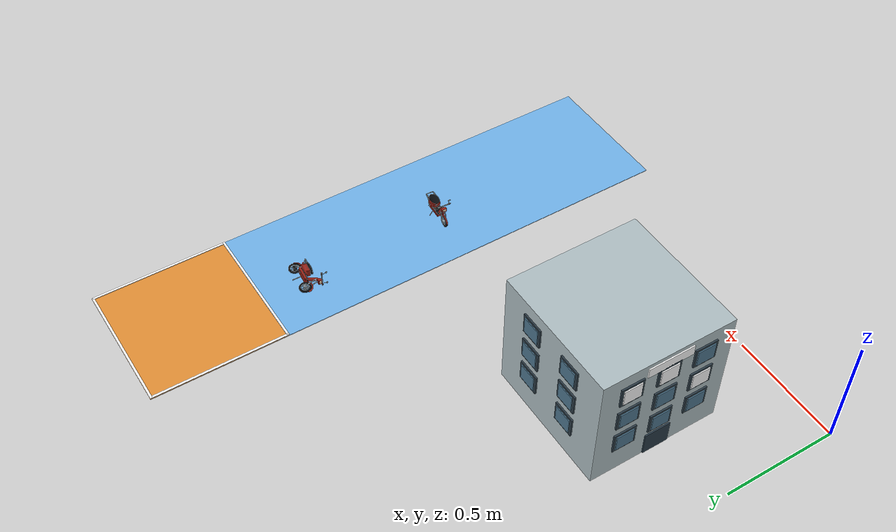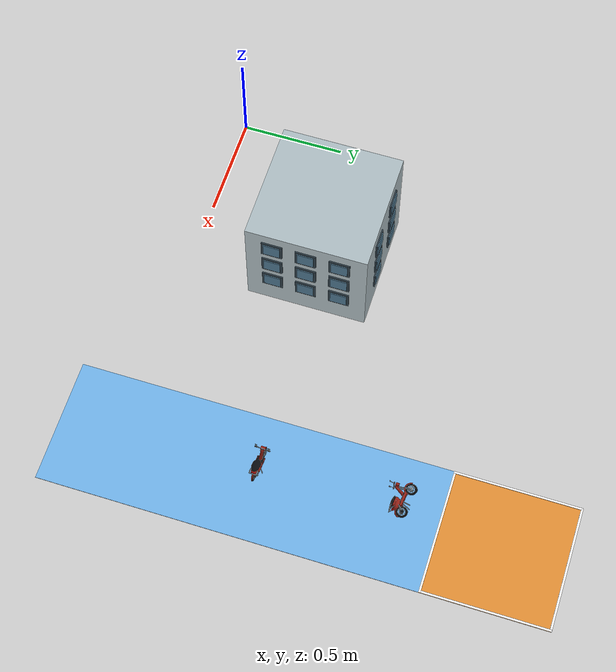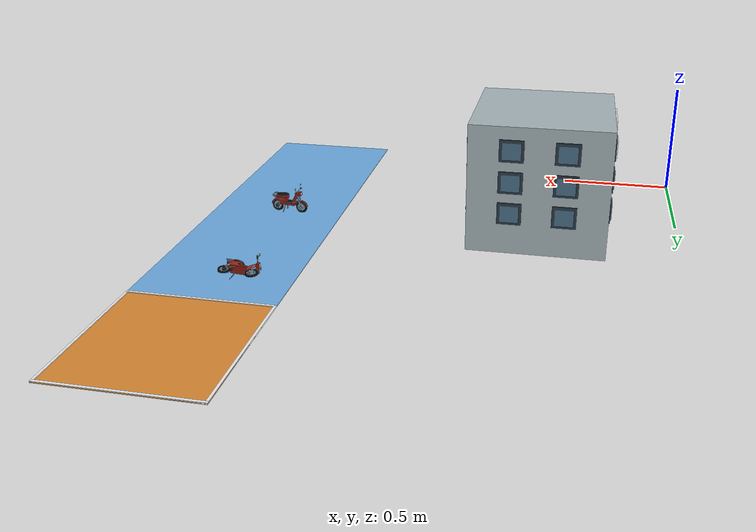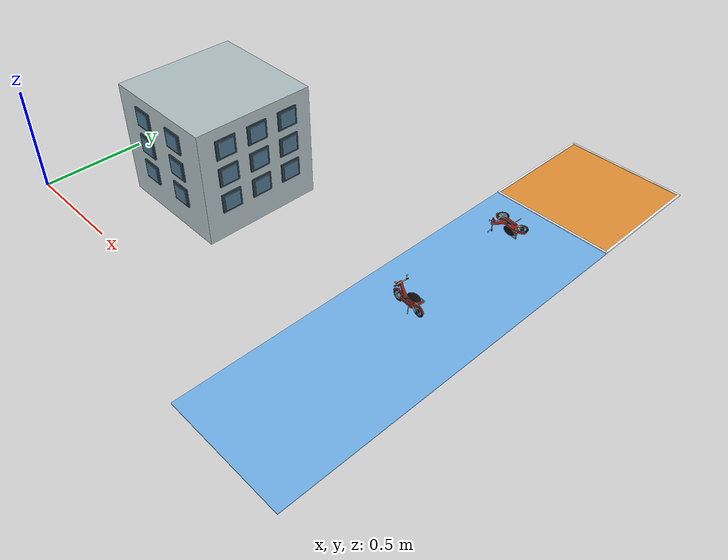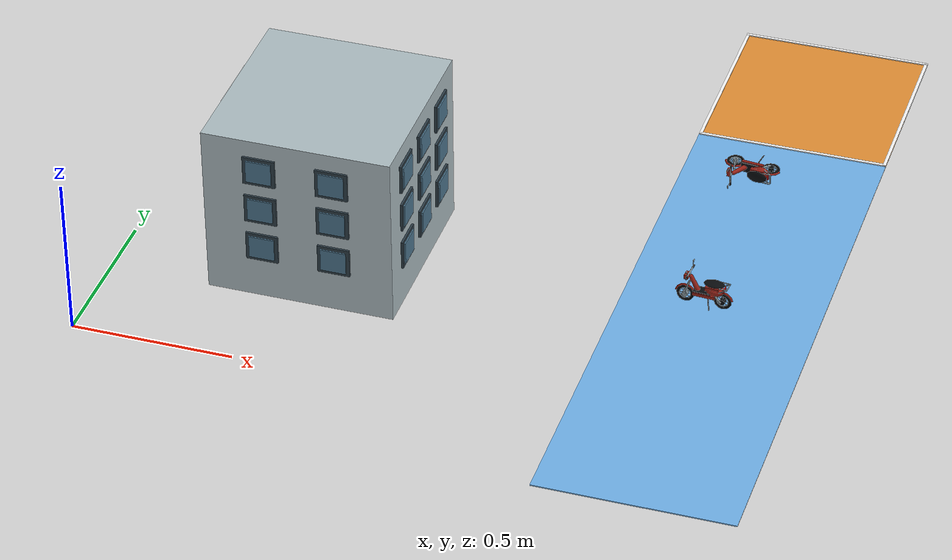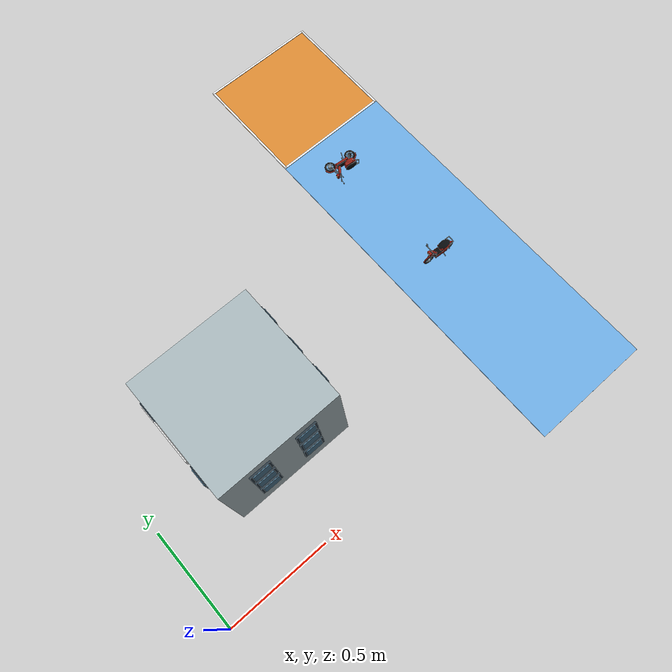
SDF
<sdf version="1.6">
 <world name="sq_community_4p2">
  <include><uri>model://sun</uri></include>
  <model name="sq4_zone_start_finish">
   <static>true</static>
   <pose>1.8000 1.8000 0.0000 0 0 0.00000</pose>
   <link name="surface">
    <visual name="surface_vis">
     <pose>0.0000 0.0000 0.0018 0 0 0.00000</pose>
     <geometry><box><size>0.6000 0.6000 0.0035</size></box></geometry>
     <material>
      <ambient>0.9000 0.5700 0.2100 1.0000</ambient>
      <diffuse>0.9000 0.5700 0.2100 1.0000</diffuse>
     </material>
    </visual>
   </link>
  </model>
  <model name="sq4_zone_ebike_parking">
   <static>true</static>
   <pose>1.8000 0.6000 0.0000 0 0 0.00000</pose>
   <link name="surface">
    <visual name="surface_vis">
     <pose>0.0000 0.0000 0.0018 0 0 0.00000</pose>
     <geometry><box><size>0.6000 1.8000 0.0035</size></box></geometry>
     <material>
      <ambient>0.4500 0.7100 0.9300 1.0000</ambient>
      <diffuse>0.4500 0.7100 0.9300 1.0000</diffuse>
     </material>
    </visual>
   </link>
  </model>
  <model name="sq4_start_outline_0">
   <static>true</static>
   <pose>1.8000 1.5050 0.0000 0 0 0.00000</pose>
   <link name="surface">
    <visual name="surface_vis">
     <pose>0.0000 0.0000 0.0035 0 0 0.00000</pose>
     <geometry><box><size>0.6000 0.0100 0.0070</size></box></geometry>
     <material>
      <ambient>0.9900 0.9900 0.9900 1.0000</ambient>
      <diffuse>0.9900 0.9900 0.9900 1.0000</diffuse>
     </material>
    </visual>
   </link>
  </model>
  <model name="sq4_start_outline_1">
   <static>true</static>
   <pose>1.8000 2.0950 0.0000 0 0 0.00000</pose>
   <link name="surface">
    <visual name="surface_vis">
     <pose>0.0000 0.0000 0.0035 0 0 0.00000</pose>
     <geometry><box><size>0.6000 0.0100 0.0070</size></box></geometry>
     <material>
      <ambient>0.9900 0.9900 0.9900 1.0000</ambient>
      <diffuse>0.9900 0.9900 0.9900 1.0000</diffuse>
     </material>
    </visual>
   </link>
  </model>
  <model name="sq4_start_outline_2">
   <static>true</static>
   <pose>1.5050 1.8000 0.0000 0 0 0.00000</pose>
   <link name="surface">
    <visual name="surface_vis">
     <pose>0.0000 0.0000 0.0035 0 0 0.00000</pose>
     <geometry><box><size>0.0100 0.6000 0.0070</size></box></geometry>
     <material>
      <ambient>0.9900 0.9900 0.9900 1.0000</ambient>
      <diffuse>0.9900 0.9900 0.9900 1.0000</diffuse>
     </material>
    </visual>
   </link>
  </model>
  <model name="sq4_start_outline_3">
   <static>true</static>
   <pose>2.0950 1.8000 0.0000 0 0 0.00000</pose>
   <link name="surface">
    <visual name="surface_vis">
     <pose>0.0000 0.0000 0.0035 0 0 0.00000</pose>
     <geometry><box><size>0.0100 0.6000 0.0070</size></box></geometry>
     <material>
      <ambient>0.9900 0.9900 0.9900 1.0000</ambient>
      <diffuse>0.9900 0.9900 0.9900 1.0000</diffuse>
     </material>
    </visual>
   </link>
  </model>
  <model name="sq4_building_A">
   <static>true</static>
   <pose>0.6000 0.6000 0.0000 0 0 0.00000</pose>
   <link name="structure">
    <visual name="structure_vis">
     <pose>0.0000 0.0000 0.2750 0 0 0.00000</pose>
     <geometry><box><size>0.5800 0.5800 0.5500</size></box></geometry>
     <material>
      <ambient>0.6900 0.7500 0.7700 1.0000</ambient>
      <diffuse>0.6900 0.7500 0.7700 1.0000</diffuse>
     </material>
    </visual>
    <collision name="structure_col">
     <pose>0.0000 0.0000 0.2750 0 0 0.00000</pose>
     <geometry><box><size>0.5800 0.5800 0.5500</size></box></geometry>
    </collision>
   </link>
   <link name="nameplate">
    <visual name="nameplate_vis">
     <pose>-0.2960 0.0000 0.5150 0 0 0.00000</pose>
     <geometry><box><size>0.0050 0.2000 0.0450</size></box></geometry>
     <material>
      <script>
       <uri>model://sq_textures/materials/scripts</uri>
       <uri>model://sq_textures/materials/textures</uri>
       <name>SQ_bldg_A</name>
      </script>
      <ambient>1 1 1 1</ambient>
      <diffuse>1 1 1 1</diffuse>
     </material>
    </visual>
   </link>
   <link name="entry_door">
    <visual name="entry_door_vis">
     <pose>-0.2960 0.0000 0.0630 0 0 0.00000</pose>
     <geometry><box><size>0.0060 0.1150 0.1050</size></box></geometry>
     <material>
      <ambient>0.1600 0.2300 0.2800 1.0000</ambient>
      <diffuse>0.1600 0.2300 0.2800 1.0000</diffuse>
     </material>
    </visual>
   </link>
   <link name="window_f1_c1_frame">
    <visual name="window_f1_c1_frame_vis">
     <pose>-0.2950 -0.1611 0.1800 0 0 0.00000</pose>
     <geometry><box><size>0.0070 0.1000 0.0930</size></box></geometry>
     <material>
      <ambient>0.1800 0.2400 0.2800 1.0000</ambient>
      <diffuse>0.1800 0.2400 0.2800 1.0000</diffuse>
     </material>
    </visual>
   </link>
   <link name="window_f1_c1_glass">
    <visual name="window_f1_c1_glass_vis">
     <pose>-0.2990 -0.1611 0.1800 0 0 0.00000</pose>
     <geometry><box><size>0.0070 0.0780 0.0720</size></box></geometry>
     <material>
      <ambient>0.3100 0.4700 0.5700 1.0000</ambient>
      <diffuse>0.3100 0.4700 0.5700 1.0000</diffuse>
     </material>
    </visual>
   </link>
   <link name="window_f1_c2_frame">
    <visual name="window_f1_c2_frame_vis">
     <pose>-0.2950 0.0000 0.1800 0 0 0.00000</pose>
     <geometry><box><size>0.0070 0.1000 0.0930</size></box></geometry>
     <material>
      <ambient>0.1800 0.2400 0.2800 1.0000</ambient>
      <diffuse>0.1800 0.2400 0.2800 1.0000</diffuse>
     </material>
    </visual>
   </link>
   <link name="window_f1_c2_glass">
    <visual name="window_f1_c2_glass_vis">
     <pose>-0.2990 0.0000 0.1800 0 0 0.00000</pose>
     <geometry><box><size>0.0070 0.0780 0.0720</size></box></geometry>
     <material>
      <ambient>0.3100 0.4700 0.5700 1.0000</ambient>
      <diffuse>0.3100 0.4700 0.5700 1.0000</diffuse>
     </material>
    </visual>
   </link>
   <link name="window_f1_c3_frame">
    <visual name="window_f1_c3_frame_vis">
     <pose>-0.2950 0.1611 0.1800 0 0 0.00000</pose>
     <geometry><box><size>0.0070 0.1000 0.0930</size></box></geometry>
     <material>
      <ambient>0.1800 0.2400 0.2800 1.0000</ambient>
      <diffuse>0.1800 0.2400 0.2800 1.0000</diffuse>
     </material>
    </visual>
   </link>
   <link name="window_f1_c3_glass">
    <visual name="window_f1_c3_glass_vis">
     <pose>-0.2990 0.1611 0.1800 0 0 0.00000</pose>
     <geometry><box><size>0.0070 0.0780 0.0720</size></box></geometry>
     <material>
      <ambient>0.3100 0.4700 0.5700 1.0000</ambient>
      <diffuse>0.3100 0.4700 0.5700 1.0000</diffuse>
     </material>
    </visual>
   </link>
   <link name="window_f2_c1_frame">
    <visual name="window_f2_c1_frame_vis">
     <pose>-0.2950 -0.1611 0.3150 0 0 0.00000</pose>
     <geometry><box><size>0.0070 0.1000 0.0930</size></box></geometry>
     <material>
      <ambient>0.1800 0.2400 0.2800 1.0000</ambient>
      <diffuse>0.1800 0.2400 0.2800 1.0000</diffuse>
     </material>
    </visual>
   </link>
   <link name="window_f2_c1_glass">
    <visual name="window_f2_c1_glass_vis">
     <pose>-0.2990 -0.1611 0.3150 0 0 0.00000</pose>
     <geometry><box><size>0.0070 0.0780 0.0720</size></box></geometry>
     <material>
      <script>
       <uri>model://sq_textures/materials/scripts</uri>
       <uri>model://sq_textures/materials/textures</uri>
       <name>SQ_win_fire</name>
      </script>
      <ambient>1 1 1 1</ambient>
      <diffuse>1 1 1 1</diffuse>
     </material>
    </visual>
   </link>
   <link name="window_f2_c2_frame">
    <visual name="window_f2_c2_frame_vis">
     <pose>-0.2950 0.0000 0.3150 0 0 0.00000</pose>
     <geometry><box><size>0.0070 0.1000 0.0930</size></box></geometry>
     <material>
      <ambient>0.1800 0.2400 0.2800 1.0000</ambient>
      <diffuse>0.1800 0.2400 0.2800 1.0000</diffuse>
     </material>
    </visual>
   </link>
   <link name="window_f2_c2_glass">
    <visual name="window_f2_c2_glass_vis">
     <pose>-0.2990 0.0000 0.3150 0 0 0.00000</pose>
     <geometry><box><size>0.0070 0.0780 0.0720</size></box></geometry>
     <material>
      <ambient>0.3100 0.4700 0.5700 1.0000</ambient>
      <diffuse>0.3100 0.4700 0.5700 1.0000</diffuse>
     </material>
    </visual>
   </link>
   <link name="window_f2_c3_frame">
    <visual name="window_f2_c3_frame_vis">
     <pose>-0.2950 0.1611 0.3150 0 0 0.00000</pose>
     <geometry><box><size>0.0070 0.1000 0.0930</size></box></geometry>
     <material>
      <ambient>0.1800 0.2400 0.2800 1.0000</ambient>
      <diffuse>0.1800 0.2400 0.2800 1.0000</diffuse>
     </material>
    </visual>
   </link>
   <link name="window_f2_c3_glass">
    <visual name="window_f2_c3_glass_vis">
     <pose>-0.2990 0.1611 0.3150 0 0 0.00000</pose>
     <geometry><box><size>0.0070 0.0780 0.0720</size></box></geometry>
     <material>
      <ambient>0.3100 0.4700 0.5700 1.0000</ambient>
      <diffuse>0.3100 0.4700 0.5700 1.0000</diffuse>
     </material>
    </visual>
   </link>
   <link name="window_f3_c1_frame">
    <visual name="window_f3_c1_frame_vis">
     <pose>-0.2950 -0.1611 0.4500 0 0 0.00000</pose>
     <geometry><box><size>0.0070 0.1000 0.0930</size></box></geometry>
     <material>
      <ambient>0.1800 0.2400 0.2800 1.0000</ambient>
      <diffuse>0.1800 0.2400 0.2800 1.0000</diffuse>
     </material>
    </visual>
   </link>
   <link name="window_f3_c1_glass">
    <visual name="window_f3_c1_glass_vis">
     <pose>-0.2990 -0.1611 0.4500 0 0 0.00000</pose>
     <geometry><box><size>0.0070 0.0780 0.0720</size></box></geometry>
     <material>
      <ambient>0.3100 0.4700 0.5700 1.0000</ambient>
      <diffuse>0.3100 0.4700 0.5700 1.0000</diffuse>
     </material>
    </visual>
   </link>
   <link name="window_f3_c2_frame">
    <visual name="window_f3_c2_frame_vis">
     <pose>-0.2950 0.0000 0.4500 0 0 0.00000</pose>
     <geometry><box><size>0.0070 0.1000 0.0930</size></box></geometry>
     <material>
      <ambient>0.1800 0.2400 0.2800 1.0000</ambient>
      <diffuse>0.1800 0.2400 0.2800 1.0000</diffuse>
     </material>
    </visual>
   </link>
   <link name="window_f3_c2_glass">
    <visual name="window_f3_c2_glass_vis">
     <pose>-0.2990 0.0000 0.4500 0 0 0.00000</pose>
     <geometry><box><size>0.0070 0.0780 0.0720</size></box></geometry>
     <material>
      <script>
       <uri>model://sq_textures/materials/scripts</uri>
       <uri>model://sq_textures/materials/textures</uri>
       <name>SQ_win_fire</name>
      </script>
      <ambient>1 1 1 1</ambient>
      <diffuse>1 1 1 1</diffuse>
     </material>
    </visual>
   </link>
   <link name="window_f3_c3_frame">
    <visual name="window_f3_c3_frame_vis">
     <pose>-0.2950 0.1611 0.4500 0 0 0.00000</pose>
     <geometry><box><size>0.0070 0.1000 0.0930</size></box></geometry>
     <material>
      <ambient>0.1800 0.2400 0.2800 1.0000</ambient>
      <diffuse>0.1800 0.2400 0.2800 1.0000</diffuse>
     </material>
    </visual>
   </link>
   <link name="window_f3_c3_glass">
    <visual name="window_f3_c3_glass_vis">
     <pose>-0.2990 0.1611 0.4500 0 0 0.00000</pose>
     <geometry><box><size>0.0070 0.0780 0.0720</size></box></geometry>
     <material>
      <script>
       <uri>model://sq_textures/materials/scripts</uri>
       <uri>model://sq_textures/materials/textures</uri>
       <name>SQ_win_fire</name>
      </script>
      <ambient>1 1 1 1</ambient>
      <diffuse>1 1 1 1</diffuse>
     </material>
    </visual>
   </link>
   <link name="side_north_f1_c1_frame">
    <visual name="side_north_f1_c1_frame_vis">
     <pose>-0.1115 0.2950 0.1800 0 0 0.00000</pose>
     <geometry><box><size>0.1000 0.0070 0.0930</size></box></geometry>
     <material>
      <ambient>0.1800 0.2400 0.2800 1.0000</ambient>
      <diffuse>0.1800 0.2400 0.2800 1.0000</diffuse>
     </material>
    </visual>
   </link>
   <link name="side_north_f1_c1_glass">
    <visual name="side_north_f1_c1_glass_vis">
     <pose>-0.1115 0.2990 0.1800 0 0 0.00000</pose>
     <geometry><box><size>0.0780 0.0070 0.0720</size></box></geometry>
     <material>
      <ambient>0.3100 0.4700 0.5700 1.0000</ambient>
      <diffuse>0.3100 0.4700 0.5700 1.0000</diffuse>
     </material>
    </visual>
   </link>
   <link name="side_north_f1_c2_frame">
    <visual name="side_north_f1_c2_frame_vis">
     <pose>0.1115 0.2950 0.1800 0 0 0.00000</pose>
     <geometry><box><size>0.1000 0.0070 0.0930</size></box></geometry>
     <material>
      <ambient>0.1800 0.2400 0.2800 1.0000</ambient>
      <diffuse>0.1800 0.2400 0.2800 1.0000</diffuse>
     </material>
    </visual>
   </link>
   <link name="side_north_f1_c2_glass">
    <visual name="side_north_f1_c2_glass_vis">
     <pose>0.1115 0.2990 0.1800 0 0 0.00000</pose>
     <geometry><box><size>0.0780 0.0070 0.0720</size></box></geometry>
     <material>
      <ambient>0.3100 0.4700 0.5700 1.0000</ambient>
      <diffuse>0.3100 0.4700 0.5700 1.0000</diffuse>
     </material>
    </visual>
   </link>
   <link name="side_north_f2_c1_frame">
    <visual name="side_north_f2_c1_frame_vis">
     <pose>-0.1115 0.2950 0.3150 0 0 0.00000</pose>
     <geometry><box><size>0.1000 0.0070 0.0930</size></box></geometry>
     <material>
      <ambient>0.1800 0.2400 0.2800 1.0000</ambient>
      <diffuse>0.1800 0.2400 0.2800 1.0000</diffuse>
     </material>
    </visual>
   </link>
   <link name="side_north_f2_c1_glass">
    <visual name="side_north_f2_c1_glass_vis">
     <pose>-0.1115 0.2990 0.3150 0 0 0.00000</pose>
     <geometry><box><size>0.0780 0.0070 0.0720</size></box></geometry>
     <material>
      <ambient>0.3100 0.4700 0.5700 1.0000</ambient>
      <diffuse>0.3100 0.4700 0.5700 1.0000</diffuse>
     </material>
    </visual>
   </link>
   <link name="side_north_f2_c2_frame">
    <visual name="side_north_f2_c2_frame_vis">
     <pose>0.1115 0.2950 0.3150 0 0 0.00000</pose>
     <geometry><box><size>0.1000 0.0070 0.0930</size></box></geometry>
     <material>
      <ambient>0.1800 0.2400 0.2800 1.0000</ambient>
      <diffuse>0.1800 0.2400 0.2800 1.0000</diffuse>
     </material>
    </visual>
   </link>
   <link name="side_north_f2_c2_glass">
    <visual name="side_north_f2_c2_glass_vis">
     <pose>0.1115 0.2990 0.3150 0 0 0.00000</pose>
     <geometry><box><size>0.0780 0.0070 0.0720</size></box></geometry>
     <material>
      <ambient>0.3100 0.4700 0.5700 1.0000</ambient>
      <diffuse>0.3100 0.4700 0.5700 1.0000</diffuse>
     </material>
    </visual>
   </link>
   <link name="side_north_f3_c1_frame">
    <visual name="side_north_f3_c1_frame_vis">
     <pose>-0.1115 0.2950 0.4500 0 0 0.00000</pose>
     <geometry><box><size>0.1000 0.0070 0.0930</size></box></geometry>
     <material>
      <ambient>0.1800 0.2400 0.2800 1.0000</ambient>
      <diffuse>0.1800 0.2400 0.2800 1.0000</diffuse>
     </material>
    </visual>
   </link>
   <link name="side_north_f3_c1_glass">
    <visual name="side_north_f3_c1_glass_vis">
     <pose>-0.1115 0.2990 0.4500 0 0 0.00000</pose>
     <geometry><box><size>0.0780 0.0070 0.0720</size></box></geometry>
     <material>
      <ambient>0.3100 0.4700 0.5700 1.0000</ambient>
      <diffuse>0.3100 0.4700 0.5700 1.0000</diffuse>
     </material>
    </visual>
   </link>
   <link name="side_north_f3_c2_frame">
    <visual name="side_north_f3_c2_frame_vis">
     <pose>0.1115 0.2950 0.4500 0 0 0.00000</pose>
     <geometry><box><size>0.1000 0.0070 0.0930</size></box></geometry>
     <material>
      <ambient>0.1800 0.2400 0.2800 1.0000</ambient>
      <diffuse>0.1800 0.2400 0.2800 1.0000</diffuse>
     </material>
    </visual>
   </link>
   <link name="side_north_f3_c2_glass">
    <visual name="side_north_f3_c2_glass_vis">
     <pose>0.1115 0.2990 0.4500 0 0 0.00000</pose>
     <geometry><box><size>0.0780 0.0070 0.0720</size></box></geometry>
     <material>
      <ambient>0.3100 0.4700 0.5700 1.0000</ambient>
      <diffuse>0.3100 0.4700 0.5700 1.0000</diffuse>
     </material>
    </visual>
   </link>
   <link name="side_south_f1_c1_frame">
    <visual name="side_south_f1_c1_frame_vis">
     <pose>-0.1115 -0.2950 0.1800 0 0 0.00000</pose>
     <geometry><box><size>0.1000 0.0070 0.0930</size></box></geometry>
     <material>
      <ambient>0.1800 0.2400 0.2800 1.0000</ambient>
      <diffuse>0.1800 0.2400 0.2800 1.0000</diffuse>
     </material>
    </visual>
   </link>
   <link name="side_south_f1_c1_glass">
    <visual name="side_south_f1_c1_glass_vis">
     <pose>-0.1115 -0.2990 0.1800 0 0 0.00000</pose>
     <geometry><box><size>0.0780 0.0070 0.0720</size></box></geometry>
     <material>
      <ambient>0.3100 0.4700 0.5700 1.0000</ambient>
      <diffuse>0.3100 0.4700 0.5700 1.0000</diffuse>
     </material>
    </visual>
   </link>
   <link name="side_south_f1_c2_frame">
    <visual name="side_south_f1_c2_frame_vis">
     <pose>0.1115 -0.2950 0.1800 0 0 0.00000</pose>
     <geometry><box><size>0.1000 0.0070 0.0930</size></box></geometry>
     <material>
      <ambient>0.1800 0.2400 0.2800 1.0000</ambient>
      <diffuse>0.1800 0.2400 0.2800 1.0000</diffuse>
     </material>
    </visual>
   </link>
   <link name="side_south_f1_c2_glass">
    <visual name="side_south_f1_c2_glass_vis">
     <pose>0.1115 -0.2990 0.1800 0 0 0.00000</pose>
     <geometry><box><size>0.0780 0.0070 0.0720</size></box></geometry>
     <material>
      <ambient>0.3100 0.4700 0.5700 1.0000</ambient>
      <diffuse>0.3100 0.4700 0.5700 1.0000</diffuse>
     </material>
    </visual>
   </link>
   <link name="side_south_f2_c1_frame">
    <visual name="side_south_f2_c1_frame_vis">
     <pose>-0.1115 -0.2950 0.3150 0 0 0.00000</pose>
     <geometry><box><size>0.1000 0.0070 0.0930</size></box></geometry>
     <material>
      <ambient>0.1800 0.2400 0.2800 1.0000</ambient>
      <diffuse>0.1800 0.2400 0.2800 1.0000</diffuse>
     </material>
    </visual>
   </link>
   <link name="side_south_f2_c1_glass">
    <visual name="side_south_f2_c1_glass_vis">
     <pose>-0.1115 -0.2990 0.3150 0 0 0.00000</pose>
     <geometry><box><size>0.0780 0.0070 0.0720</size></box></geometry>
     <material>
      <ambient>0.3100 0.4700 0.5700 1.0000</ambient>
      <diffuse>0.3100 0.4700 0.5700 1.0000</diffuse>
     </material>
    </visual>
   </link>
   <link name="side_south_f2_c2_frame">
    <visual name="side_south_f2_c2_frame_vis">
     <pose>0.1115 -0.2950 0.3150 0 0 0.00000</pose>
     <geometry><box><size>0.1000 0.0070 0.0930</size></box></geometry>
     <material>
      <ambient>0.1800 0.2400 0.2800 1.0000</ambient>
      <diffuse>0.1800 0.2400 0.2800 1.0000</diffuse>
     </material>
    </visual>
   </link>
   <link name="side_south_f2_c2_glass">
    <visual name="side_south_f2_c2_glass_vis">
     <pose>0.1115 -0.2990 0.3150 0 0 0.00000</pose>
     <geometry><box><size>0.0780 0.0070 0.0720</size></box></geometry>
     <material>
      <ambient>0.3100 0.4700 0.5700 1.0000</ambient>
      <diffuse>0.3100 0.4700 0.5700 1.0000</diffuse>
     </material>
    </visual>
   </link>
   <link name="side_south_f3_c1_frame">
    <visual name="side_south_f3_c1_frame_vis">
     <pose>-0.1115 -0.2950 0.4500 0 0 0.00000</pose>
     <geometry><box><size>0.1000 0.0070 0.0930</size></box></geometry>
     <material>
      <ambient>0.1800 0.2400 0.2800 1.0000</ambient>
      <diffuse>0.1800 0.2400 0.2800 1.0000</diffuse>
     </material>
    </visual>
   </link>
   <link name="side_south_f3_c1_glass">
    <visual name="side_south_f3_c1_glass_vis">
     <pose>-0.1115 -0.2990 0.4500 0 0 0.00000</pose>
     <geometry><box><size>0.0780 0.0070 0.0720</size></box></geometry>
     <material>
      <ambient>0.3100 0.4700 0.5700 1.0000</ambient>
      <diffuse>0.3100 0.4700 0.5700 1.0000</diffuse>
     </material>
    </visual>
   </link>
   <link name="side_south_f3_c2_frame">
    <visual name="side_south_f3_c2_frame_vis">
     <pose>0.1115 -0.2950 0.4500 0 0 0.00000</pose>
     <geometry><box><size>0.1000 0.0070 0.0930</size></box></geometry>
     <material>
      <ambient>0.1800 0.2400 0.2800 1.0000</ambient>
      <diffuse>0.1800 0.2400 0.2800 1.0000</diffuse>
     </material>
    </visual>
   </link>
   <link name="side_south_f3_c2_glass">
    <visual name="side_south_f3_c2_glass_vis">
     <pose>0.1115 -0.2990 0.4500 0 0 0.00000</pose>
     <geometry><box><size>0.0780 0.0070 0.0720</size></box></geometry>
     <material>
      <ambient>0.3100 0.4700 0.5700 1.0000</ambient>
      <diffuse>0.3100 0.4700 0.5700 1.0000</diffuse>
     </material>
    </visual>
   </link>
   <link name="rear_f1_c1_frame">
    <visual name="rear_f1_c1_frame_vis">
     <pose>0.2950 -0.1611 0.1800 0 0 0.00000</pose>
     <geometry><box><size>0.0070 0.1000 0.0930</size></box></geometry>
     <material>
      <ambient>0.1800 0.2400 0.2800 1.0000</ambient>
      <diffuse>0.1800 0.2400 0.2800 1.0000</diffuse>
     </material>
    </visual>
   </link>
   <link name="rear_f1_c1_glass">
    <visual name="rear_f1_c1_glass_vis">
     <pose>0.2990 -0.1611 0.1800 0 0 0.00000</pose>
     <geometry><box><size>0.0070 0.0780 0.0720</size></box></geometry>
     <material>
      <ambient>0.3100 0.4700 0.5700 1.0000</ambient>
      <diffuse>0.3100 0.4700 0.5700 1.0000</diffuse>
     </material>
    </visual>
   </link>
   <link name="rear_f1_c2_frame">
    <visual name="rear_f1_c2_frame_vis">
     <pose>0.2950 0.0000 0.1800 0 0 0.00000</pose>
     <geometry><box><size>0.0070 0.1000 0.0930</size></box></geometry>
     <material>
      <ambient>0.1800 0.2400 0.2800 1.0000</ambient>
      <diffuse>0.1800 0.2400 0.2800 1.0000</diffuse>
     </material>
    </visual>
   </link>
   <link name="rear_f1_c2_glass">
    <visual name="rear_f1_c2_glass_vis">
     <pose>0.2990 0.0000 0.1800 0 0 0.00000</pose>
     <geometry><box><size>0.0070 0.0780 0.0720</size></box></geometry>
     <material>
      <ambient>0.3100 0.4700 0.5700 1.0000</ambient>
      <diffuse>0.3100 0.4700 0.5700 1.0000</diffuse>
     </material>
    </visual>
   </link>
   <link name="rear_f1_c3_frame">
    <visual name="rear_f1_c3_frame_vis">
     <pose>0.2950 0.1611 0.1800 0 0 0.00000</pose>
     <geometry><box><size>0.0070 0.1000 0.0930</size></box></geometry>
     <material>
      <ambient>0.1800 0.2400 0.2800 1.0000</ambient>
      <diffuse>0.1800 0.2400 0.2800 1.0000</diffuse>
     </material>
    </visual>
   </link>
   <link name="rear_f1_c3_glass">
    <visual name="rear_f1_c3_glass_vis">
     <pose>0.2990 0.1611 0.1800 0 0 0.00000</pose>
     <geometry><box><size>0.0070 0.0780 0.0720</size></box></geometry>
     <material>
      <ambient>0.3100 0.4700 0.5700 1.0000</ambient>
      <diffuse>0.3100 0.4700 0.5700 1.0000</diffuse>
     </material>
    </visual>
   </link>
   <link name="rear_f2_c1_frame">
    <visual name="rear_f2_c1_frame_vis">
     <pose>0.2950 -0.1611 0.3150 0 0 0.00000</pose>
     <geometry><box><size>0.0070 0.1000 0.0930</size></box></geometry>
     <material>
      <ambient>0.1800 0.2400 0.2800 1.0000</ambient>
      <diffuse>0.1800 0.2400 0.2800 1.0000</diffuse>
     </material>
    </visual>
   </link>
   <link name="rear_f2_c1_glass">
    <visual name="rear_f2_c1_glass_vis">
     <pose>0.2990 -0.1611 0.3150 0 0 0.00000</pose>
     <geometry><box><size>0.0070 0.0780 0.0720</size></box></geometry>
     <material>
      <ambient>0.3100 0.4700 0.5700 1.0000</ambient>
      <diffuse>0.3100 0.4700 0.5700 1.0000</diffuse>
     </material>
    </visual>
   </link>
   <link name="rear_f2_c2_frame">
    <visual name="rear_f2_c2_frame_vis">
     <pose>0.2950 0.0000 0.3150 0 0 0.00000</pose>
     <geometry><box><size>0.0070 0.1000 0.0930</size></box></geometry>
     <material>
      <ambient>0.1800 0.2400 0.2800 1.0000</ambient>
      <diffuse>0.1800 0.2400 0.2800 1.0000</diffuse>
     </material>
    </visual>
   </link>
   <link name="rear_f2_c2_glass">
    <visual name="rear_f2_c2_glass_vis">
     <pose>0.2990 0.0000 0.3150 0 0 0.00000</pose>
     <geometry><box><size>0.0070 0.0780 0.0720</size></box></geometry>
     <material>
      <ambient>0.3100 0.4700 0.5700 1.0000</ambient>
      <diffuse>0.3100 0.4700 0.5700 1.0000</diffuse>
     </material>
    </visual>
   </link>
   <link name="rear_f2_c3_frame">
    <visual name="rear_f2_c3_frame_vis">
     <pose>0.2950 0.1611 0.3150 0 0 0.00000</pose>
     <geometry><box><size>0.0070 0.1000 0.0930</size></box></geometry>
     <material>
      <ambient>0.1800 0.2400 0.2800 1.0000</ambient>
      <diffuse>0.1800 0.2400 0.2800 1.0000</diffuse>
     </material>
    </visual>
   </link>
   <link name="rear_f2_c3_glass">
    <visual name="rear_f2_c3_glass_vis">
     <pose>0.2990 0.1611 0.3150 0 0 0.00000</pose>
     <geometry><box><size>0.0070 0.0780 0.0720</size></box></geometry>
     <material>
      <ambient>0.3100 0.4700 0.5700 1.0000</ambient>
      <diffuse>0.3100 0.4700 0.5700 1.0000</diffuse>
     </material>
    </visual>
   </link>
   <link name="rear_f3_c1_frame">
    <visual name="rear_f3_c1_frame_vis">
     <pose>0.2950 -0.1611 0.4500 0 0 0.00000</pose>
     <geometry><box><size>0.0070 0.1000 0.0930</size></box></geometry>
     <material>
      <ambient>0.1800 0.2400 0.2800 1.0000</ambient>
      <diffuse>0.1800 0.2400 0.2800 1.0000</diffuse>
     </material>
    </visual>
   </link>
   <link name="rear_f3_c1_glass">
    <visual name="rear_f3_c1_glass_vis">
     <pose>0.2990 -0.1611 0.4500 0 0 0.00000</pose>
     <geometry><box><size>0.0070 0.0780 0.0720</size></box></geometry>
     <material>
      <ambient>0.3100 0.4700 0.5700 1.0000</ambient>
      <diffuse>0.3100 0.4700 0.5700 1.0000</diffuse>
     </material>
    </visual>
   </link>
   <link name="rear_f3_c2_frame">
    <visual name="rear_f3_c2_frame_vis">
     <pose>0.2950 0.0000 0.4500 0 0 0.00000</pose>
     <geometry><box><size>0.0070 0.1000 0.0930</size></box></geometry>
     <material>
      <ambient>0.1800 0.2400 0.2800 1.0000</ambient>
      <diffuse>0.1800 0.2400 0.2800 1.0000</diffuse>
     </material>
    </visual>
   </link>
   <link name="rear_f3_c2_glass">
    <visual name="rear_f3_c2_glass_vis">
     <pose>0.2990 0.0000 0.4500 0 0 0.00000</pose>
     <geometry><box><size>0.0070 0.0780 0.0720</size></box></geometry>
     <material>
      <ambient>0.3100 0.4700 0.5700 1.0000</ambient>
      <diffuse>0.3100 0.4700 0.5700 1.0000</diffuse>
     </material>
    </visual>
   </link>
   <link name="rear_f3_c3_frame">
    <visual name="rear_f3_c3_frame_vis">
     <pose>0.2950 0.1611 0.4500 0 0 0.00000</pose>
     <geometry><box><size>0.0070 0.1000 0.0930</size></box></geometry>
     <material>
      <ambient>0.1800 0.2400 0.2800 1.0000</ambient>
      <diffuse>0.1800 0.2400 0.2800 1.0000</diffuse>
     </material>
    </visual>
   </link>
   <link name="rear_f3_c3_glass">
    <visual name="rear_f3_c3_glass_vis">
     <pose>0.2990 0.1611 0.4500 0 0 0.00000</pose>
     <geometry><box><size>0.0070 0.0780 0.0720</size></box></geometry>
     <material>
      <ambient>0.3100 0.4700 0.5700 1.0000</ambient>
      <diffuse>0.3100 0.4700 0.5700 1.0000</diffuse>
     </material>
    </visual>
   </link>
  </model>
  <model name="sq4_ebike_06">
   <static>true</static>
   <pose>1.746000 0.650000 0.004000 0.00000000 0 3.07177948</pose>
   <link name="body">
    <visual name="body_visual">
     <geometry><mesh><uri>model://sq_ebikes_3d/meshes/ebike_1.dae</uri></mesh></geometry>
    </visual>
    <collision name="body_collision">
     <pose>0 0 0.065000 0 0 0</pose>
     <geometry><box><size>0.180000 0.075000 0.130000</size></box></geometry>
    </collision>
   </link>
  </model>
  <model name="sq4_ebike_10">
   <static>true</static>
   <pose>1.720794 1.362644 0.041500 -1.57079633 0 3.03687290</pose>
   <link name="body">
    <visual name="body_visual">
     <geometry><mesh><uri>model://sq_ebikes_3d/meshes/ebike_1.dae</uri></mesh></geometry>
    </visual>
    <collision name="body_collision">
     <pose>0 0 0.065000 0 0 0</pose>
     <geometry><box><size>0.180000 0.075000 0.130000</size></box></geometry>
    </collision>
   </link>
  </model>
 </world>
</sdf>
